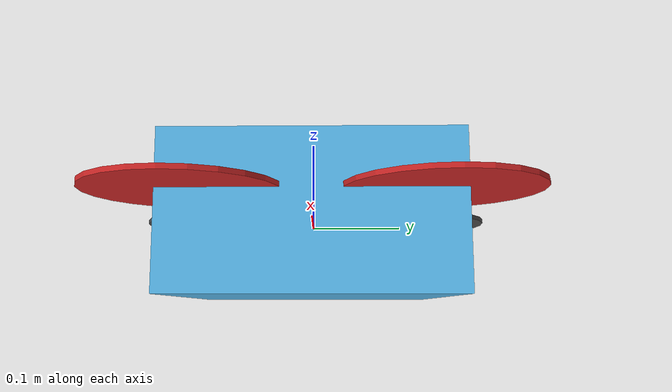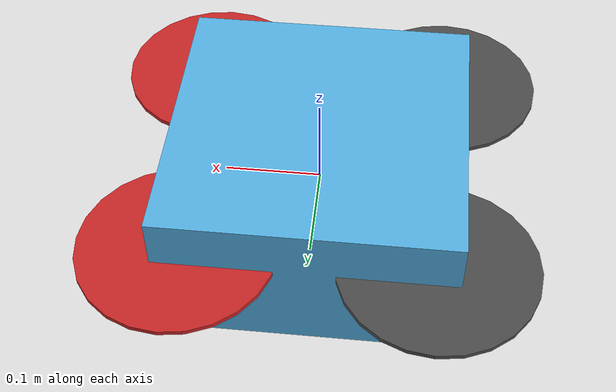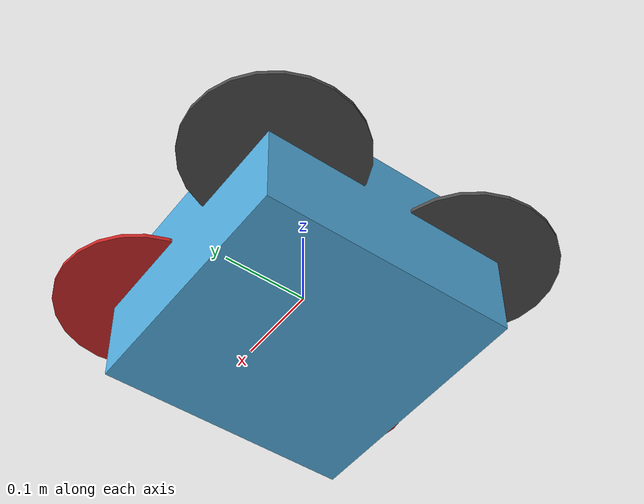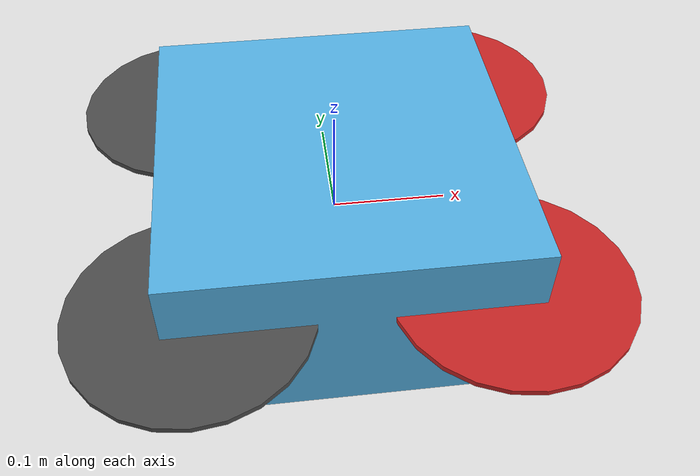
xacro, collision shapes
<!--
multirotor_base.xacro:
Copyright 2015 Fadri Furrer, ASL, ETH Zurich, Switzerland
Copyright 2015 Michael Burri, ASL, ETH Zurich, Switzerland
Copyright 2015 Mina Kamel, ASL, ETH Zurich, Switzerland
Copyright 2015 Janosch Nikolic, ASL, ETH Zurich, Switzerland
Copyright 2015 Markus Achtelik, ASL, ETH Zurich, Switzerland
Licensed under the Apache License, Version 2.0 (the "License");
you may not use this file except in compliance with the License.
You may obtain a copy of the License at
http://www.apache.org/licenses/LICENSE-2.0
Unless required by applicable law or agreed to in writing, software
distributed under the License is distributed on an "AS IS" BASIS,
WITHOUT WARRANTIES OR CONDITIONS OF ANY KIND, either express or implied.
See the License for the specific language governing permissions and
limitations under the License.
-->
<?xml version="1.0"?>

<robot name="ardrone" xmlns:xacro="http://ros.org/wiki/xacro">
  <!-- Properties -->
  <xacro:property name="namespace" value="ardrone" />
  <xacro:property name="rotor_velocity_slowdown_sim" value="10" />
  <xacro:property name="mesh_file" value="ardrone.dae" />
  <xacro:property name="mesh_scale" value="0.001 0.001 0.001"/>
  <xacro:property name="mesh_scale_prop" value="0.001 0.001 0.001"/>
  <xacro:property name="mass" value="1.5" /> <!-- [kg] -->
  <xacro:property name="body_width" value="0.3" />
  <xacro:property name="body_height" value="0.16" />
  <xacro:property name="mass_rotor" value="0.005" /> <!-- [kg] -->
  <xacro:property name="arm_length" value="0.09" />
  <xacro:property name="rotor_offset_top" value="0.023" />
  <xacro:property name="radius_rotor" value="0.1" />
  <xacro:property name="motor_constant" value="8.54858e-06" /> <!-- [kg·m/s^2] -->
  <xacro:property name="moment_constant" value="0.016" />
  <xacro:property name="time_constant_up" value="0.0125" />
  <xacro:property name="time_constant_down" value="0.025" />
  <xacro:property name="max_rot_velocity" value="838" /> <!-- [rad/s] -->
  <xacro:property name="sin30" value="0.5" />
  <xacro:property name="cos30" value="0.866025403784" />
  <xacro:property name="sqrt2" value="1.4142135623730951" />
  <xacro:property name="rotor_drag_coefficient" value="8.06428e-05" />
  <xacro:property name="rolling_moment_coefficient" value="0.000001" />
  <xacro:property name="color" value="DarkGrey" />

  <!-- Property Blocks -->
  <xacro:property name="body_inertia">
    <inertia ixx="0.0347563" ixy="0.0" ixz="0.0" iyy="0.0458929" iyz="0.0" izz="0.0977" /> <!-- [kg·m^2] [kg·m^2] [kg·m^2] [kg·m^2] [kg·m^2] [kg·m^2] -->
  </xacro:property>

  <!-- inertia of a single rotor, assuming it is a cuboid. Height=3mm, width=15mm -->
  <xacro:property name="rotor_inertia">
    <inertia
    ixx="${1/12 * mass_rotor * (0.015 * 0.015 + 0.003 * 0.003) * rotor_velocity_slowdown_sim}"
    iyy="${1/12 * mass_rotor * (4 * radius_rotor * radius_rotor + 0.003 * 0.003) * rotor_velocity_slowdown_sim}"
    izz="${1/12 * mass_rotor * (4 * radius_rotor * radius_rotor + 0.015 * 0.015) * rotor_velocity_slowdown_sim}"
    ixy="0.0" ixz="0.0"  iyz="0.0" /> <!-- [kg·m^2] [kg·m^2] [kg·m^2] [kg·m^2] [kg·m^2] [kg·m^2] -->
  </xacro:property>

  <!-- Included URDF Files -->
  <xacro:include filename="$(find mav_description)/urdf/multirotor_base.xacro" />

  <!-- Instantiate multirotor_base_macro once -->
  <xacro:multirotor_base_macro
    robot_namespace="${namespace}"
    mass="${mass}"
    body_width="${body_width}"
    body_height="${body_height}"
    mesh_file="${mesh_file}"
    mesh_scale="${mesh_scale}"
    color="${color}"
    >
    <xacro:insert_block name="body_inertia" />
  </xacro:multirotor_base_macro>

  <!-- Instantiate rotors -->
  <xacro:vertical_rotor
    robot_namespace="${namespace}"
    suffix="front_right"
    direction="ccw"
    motor_constant="${motor_constant}"
    moment_constant="${moment_constant}"
    parent="base_link"
    mass_rotor="${mass_rotor}"
    radius_rotor="${radius_rotor}"
    time_constant_up="${time_constant_up}"
    time_constant_down="${time_constant_down}"
    max_rot_velocity="${max_rot_velocity}"
    motor_number="0"
    rotor_drag_coefficient="${rotor_drag_coefficient}"
    rolling_moment_coefficient="${rolling_moment_coefficient}"
    mesh="ardrone_prop"
    mesh_scale="${mesh_scale_prop}"
    color="Red">
    <origin xyz="${sqrt2 * arm_length} -${sqrt2 * arm_length} ${rotor_offset_top}" rpy="0 0 0" />
    <xacro:insert_block name="rotor_inertia" />
  </xacro:vertical_rotor>

  <xacro:vertical_rotor
    robot_namespace="${namespace}"
    suffix="back_left"
    direction="ccw"
    motor_constant="${motor_constant}"
    moment_constant="${moment_constant}"
    parent="base_link"
    mass_rotor="${mass_rotor}"
    radius_rotor="${radius_rotor}"
    time_constant_up="${time_constant_up}"
    time_constant_down="${time_constant_down}"
    max_rot_velocity="${max_rot_velocity}"
    motor_number="1"
    rotor_drag_coefficient="${rotor_drag_coefficient}"
    rolling_moment_coefficient="${rolling_moment_coefficient}"
    mesh="ardrone_prop"
    mesh_scale="${mesh_scale_prop}"
    color="DarkGrey">
    <origin xyz="-${sqrt2 * arm_length} ${sqrt2 * arm_length} ${rotor_offset_top}" rpy="0 0 0" />
    <xacro:insert_block name="rotor_inertia" />
  </xacro:vertical_rotor>

  <xacro:vertical_rotor robot_namespace="${namespace}"
    suffix="front_left"
    direction="cw"
    motor_constant="${motor_constant}"
    moment_constant="${moment_constant}"
    parent="base_link"
    mass_rotor="${mass_rotor}"
    radius_rotor="${radius_rotor}"
    time_constant_up="${time_constant_up}"
    time_constant_down="${time_constant_down}"
    max_rot_velocity="${max_rot_velocity}"
    motor_number="2"
    rotor_drag_coefficient="${rotor_drag_coefficient}"
    rolling_moment_coefficient="${rolling_moment_coefficient}"
    mesh="ardrone_prop"
    mesh_scale="${mesh_scale_prop}"
    color="Red">
    <origin xyz="${sqrt2 * arm_length} ${sqrt2 * arm_length} ${rotor_offset_top}" rpy="0 0 0" />
    <xacro:insert_block name="rotor_inertia" />
  </xacro:vertical_rotor>

  <xacro:vertical_rotor robot_namespace="${namespace}"
    suffix="back_right"
    direction="cw"
    motor_constant="${motor_constant}"
    moment_constant="${moment_constant}"
    parent="base_link"
    mass_rotor="${mass_rotor}"
    radius_rotor="${radius_rotor}"
    time_constant_up="${time_constant_up}"
    time_constant_down="${time_constant_down}"
    max_rot_velocity="${max_rot_velocity}"
    motor_number="3"
    rotor_drag_coefficient="${rotor_drag_coefficient}"
    rolling_moment_coefficient="${rolling_moment_coefficient}"
    mesh="ardrone_prop"
    mesh_scale="${mesh_scale_prop}"
    color="DarkGrey">
    <origin xyz="-${sqrt2 * arm_length} -${sqrt2 * arm_length} ${rotor_offset_top}" rpy="0 0 0" />
    <xacro:insert_block name="rotor_inertia" />
  </xacro:vertical_rotor>

</robot>

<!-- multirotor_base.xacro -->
<robot xmlns:xacro="http://ros.org/wiki/xacro">
  <!-- Main multirotor link -->
  <xacro:macro name="multirotor_base_macro"
    params="robot_namespace mass body_width body_height mesh_file mesh_scale color *inertia">
    <link name="base_link"></link>

    <joint name="base_joint" type="fixed">
      <origin xyz="0 0 0" rpy="0 0 0" />
      <parent link="base_link" />
      <child link="base_link_inertia" />
    </joint>

    <link name="base_link_inertia">
      <inertial>
        <mass value="${mass}" />  <!-- [kg] -->
        <origin xyz="0 0 0" />
        <xacro:insert_block name="inertia" />
      </inertial>

      <visual>
        <origin xyz="0 0 0" rpy="0 0 0" />
        <geometry>
          <mesh filename="package://mav_description/meshes/${mesh_file}"
            scale="${mesh_scale}" />

        </geometry>
      </visual>

      <collision>
        <origin xyz="0 0 0" rpy="0 0 0" />
        <geometry>
          <box size="${body_width} ${body_width} ${body_height}" />
        </geometry>
      </collision>
    </link>

    <!-- attach multirotor_base_plugin to the base_link -->
    <gazebo>
      <plugin filename="libmav_gazebo_multirotor_base_plugin.so" name="rosbag">
        <robotNamespace>${robot_namespace}</robotNamespace>
        <linkName>base_link</linkName>
        <rotorVelocitySlowdownSim>${rotor_velocity_slowdown_sim}</rotorVelocitySlowdownSim>
      </plugin>
    </gazebo>

    <gazebo reference="base_link">
      <material>Gazebo/${color}</material>
    </gazebo>
  </xacro:macro>

  <!-- camera -->
  <xacro:macro name="camera_macro" params="robot_namespace">
    <!-- joint -->
    <joint name="camera_joint" type="fixed">
      <axis xyz="0 1 0" />
      <origin xyz="0 0 0.2" rpy="0 0 0" />
      <parent link="base_link" />
      <child link="camera_link" />
    </joint>

    <!-- link -->
    <link name="camera_link">
      <collision>
        <origin xyz="0 0 0" rpy="0 0 0" />
        <geometry>
          <box size="0.1 0.1 0.1" />
        </geometry>
      </collision>

      <visual>
        <origin xyz="0 0 0" rpy="0 0 0" />
        <geometry>
          <box size="0.1 0.1 0.1" />
        </geometry>
        <material name="red" />
      </visual>

      <inertial>
        <mass value="1e-5" />
        <origin xyz="0 0 0" rpy="0 0 0" />
        <inertia ixx="1e-6" ixy="0" ixz="0" iyy="1e-6" iyz="0" izz="1e-6" />
      </inertial>
    </link>
    <gazebo reference="camera_link">
      <material>Gazebo/Red</material>
      <sensor type="camera" name="camera1">
        <update_rate>30.0</update_rate>
        <camera name="head">
          <horizontal_fov>2</horizontal_fov>
          <image>
            <width>800</width>
            <height>600</height>
            <format>R8G8B8</format>
          </image>
          <clip>
            <near>0.02</near>
            <far>300</far>
          </clip>
          <noise>
            <type>gaussian</type>
            <mean>0.0</mean>
            <stddev>0.007</stddev>
          </noise>
        </camera>
        <plugin name="camera_controller" filename="libgazebo_ros_camera.so">
          <alwaysOn>true</alwaysOn>
          <updateRate>0.0</updateRate>
          <cameraName>${robot_namespace}/camera1</cameraName>
          <imageTopicName>image_raw</imageTopicName>
          <cameraInfoTopicName>camera_info</cameraInfoTopicName>
          <frameName>camera_link</frameName>
          <hackBaseline>0.07</hackBaseline>
          <distortionK1>0.0</distortionK1>
          <distortionK2>0.0</distortionK2>
          <distortionK3>0.0</distortionK3>
          <distortionT1>0.0</distortionT1>
          <distortionT2>0.0</distortionT2>
        </plugin>
      </sensor>
    </gazebo>
  </xacro:macro>

  <!-- Laser -->
  <xacro:macro name="laser_macro" params="robot_namespace">
    <!-- joint -->
    <joint name="laser_joint" type="fixed">
      <axis xyz="0 1 0" />
      <origin xyz="0 0 -0.2" rpy="0 1.5707963267948966 0" />
      <parent link="base_link" />
      <child link="laser_link" />
    </joint>

    <!-- link -->
    <link name="laser_link">

      <!-- inertial-->
      <inertial>
        <mass value="1e-5" />
        <origin xyz="0 0 0" rpy="0 0 0" />
        <inertia ixx="1e-6" ixy="0" ixz="0" iyy="1e-6" iyz="0" izz="1e-6" />
      </inertial>
    </link>

    <gazebo reference="laser_link">
      <material>Gazebo/Blue</material>
      <sensor type="gpu_ray" name="head_hokuyo_sensor">
        <pose>0 0 0 0 0 0</pose>
        <visualize>false</visualize>
        <update_rate>40</update_rate>
        <ray>
          <scan>
            <horizontal>
              <samples>1</samples>
              <resolution>1</resolution>
              <min_angle>-0.1</min_angle>
              <max_angle>0.1</max_angle>
            </horizontal>
          </scan>
          <range>
            <min>0.10</min>
            <max>40.0</max>
            <resolution>0.01</resolution>
          </range>
          <noise>
            <type>gaussian</type>
          <mean>0.0</mean>
          <stddev>0.01</stddev>
        </noise>
      </ray>
      <plugin name="gazebo_ros_head_hokuyo_controller" filename="libgazebo_ros_gpu_laser.so">
        <topicName>${robot_namespace}/laser1/scan</topicName>
        <frameName>laser_link</frameName>
      </plugin>
    </sensor>
  </gazebo>
  </xacro:macro>

  <!-- Rotor joint and link -->
  <xacro:macro name="vertical_rotor"
    params="robot_namespace suffix direction motor_constant moment_constant parent mass_rotor radius_rotor time_constant_up time_constant_down max_rot_velocity motor_number rotor_drag_coefficient rolling_moment_coefficient color mesh mesh_scale *origin *inertia">
    <joint name="rotor_${motor_number}_joint" type="continuous">
      <xacro:insert_block name="origin" />
      <axis xyz="0 0 1" />
      <!-- TODO(ff): not currently set because it's not yet supported -->
      <parent link="${parent}" />
      <child link="rotor_${motor_number}" />

    </joint>
    <!-- TODO(ff): not currently set because it's not yet supported -->
    <link name="rotor_${motor_number}">
      <inertial>
        <mass value="${mass_rotor}" /> <!-- [kg] -->
        <xacro:insert_block name="inertia" />
      </inertial>
      <visual>
        <geometry>

          <mesh filename="package://mav_description/meshes/${mesh}_${direction}.dae"
            scale="${mesh_scale}" />
        </geometry>
      </visual>
      <collision>
        <geometry>
          <cylinder length="0.005" radius="${radius_rotor}" />
        </geometry>
      </collision>
    </link>
    <gazebo>
      <plugin name="${suffix}_motor_model" filename="libmav_gazebo_motor_model.so">
        <jointName>rotor_${motor_number}_joint</jointName>
        <linkName>rotor_${motor_number}</linkName>
        <turningDirection>${direction}</turningDirection>
        <timeConstantUp>${time_constant_up}</timeConstantUp>
        <timeConstantDown>${time_constant_down}</timeConstantDown>
        <maxRotVelocity>${max_rot_velocity}</maxRotVelocity>
        <motorConstant>${motor_constant}</motorConstant>
        <momentConstant>${moment_constant}</momentConstant>
        <commandSubTopic>${robot_namespace}/motor_velocity_reference</commandSubTopic>
        <motorNumber>${motor_number}</motorNumber>
        <rotorDragCoefficient>${rotor_drag_coefficient}</rotorDragCoefficient>
        <rollingMomentCoefficient>${rolling_moment_coefficient}</rollingMomentCoefficient>
        <motorVelocityPubTopic>${robot_namespace}/motor_vel/${motor_number}</motorVelocityPubTopic>
        <rotorVelocitySlowdownSim>${rotor_velocity_slowdown_sim}</rotorVelocitySlowdownSim>
      </plugin>
    </gazebo>
    <gazebo reference="rotor_${motor_number}">
      <material>Gazebo/${color}</material>
    </gazebo>
  </xacro:macro>
</robot>
